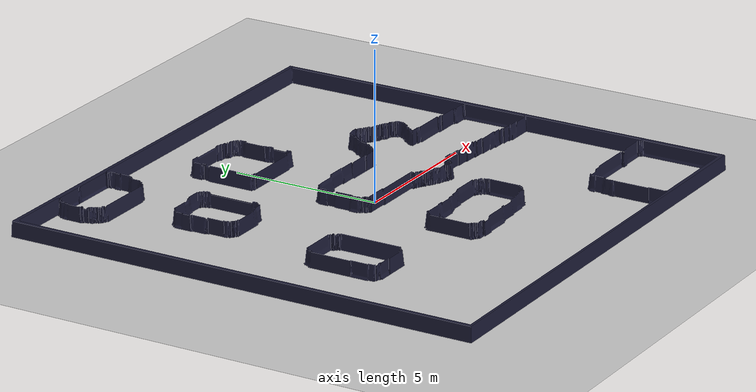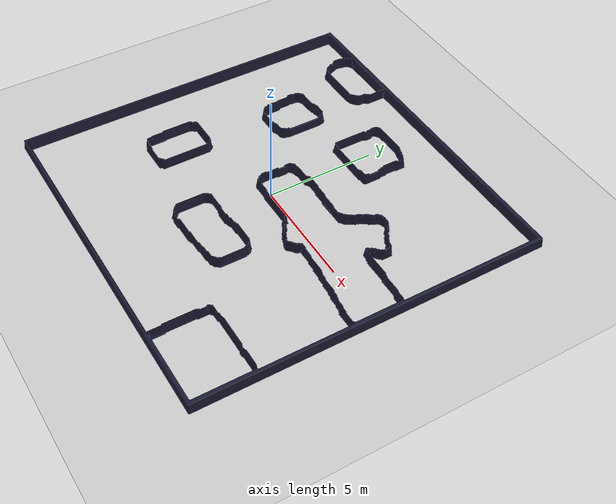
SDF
<?xml version="1.0"?>
<sdf version="1.6">
  <world name="default">

    <include>
      <uri>model://ground_plane</uri>
    </include>

    <include>
      <uri>model://sun</uri>
    </include>

    <scene>
      <shadows>false</shadows>
    </scene>

    <gui fullscreen='0'>
      <camera name='user_camera'>
        <pose frame=''>0. -1.5 25.5 0 1.5138 1.5707</pose>
        <view_controller>orbit</view_controller>
        <projection_type>perspective</projection_type>
      </camera>
    </gui>

    <physics type="ode">
      <real_time_update_rate>1000.0</real_time_update_rate>
      <max_step_size>0.001</max_step_size>
      <real_time_factor>1</real_time_factor>
      <ode>
        <solver>
          <type>quick</type>
          <iters>150</iters>
          <precon_iters>0</precon_iters>
          <sor>1.400000</sor>
          <use_dynamic_moi_rescaling>1</use_dynamic_moi_rescaling>
        </solver>
        <constraints>
          <cfm>0.00001</cfm>
          <erp>0.2</erp>
          <contact_max_correcting_vel>2000.000000</contact_max_correcting_vel>
          <contact_surface_layer>0.01000</contact_surface_layer>
        </constraints>
      </ode>
    </physics>

    <include>
      <uri>model://map_1</uri>
    </include>
  </world>
</sdf>

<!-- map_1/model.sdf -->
<sdf version="1.5">
  <model name="mapa">
  <pose>0.0 0. 0.25 0.0 0.0 0.</pose>
    <static>true</static>

    <link name="base_link">
      <inertial>
        <pose>0 0 0 0 0 0</pose>
        <inertia>
          <ixx>4.2111447e-02</ixx>
          <ixy>0</ixy>
          <ixz>0</ixz>
          <iyy>4.2111447e-02</iyy>
          <iyz>0</iyz>
          <izz>7.5254874e-02</izz>
        </inertia>
        <mass>2</mass>
      </inertial>

      <collision name="base_collision">
        <pose>0 0 0 0 0 0</pose>
        <geometry>
          <mesh>
            <uri>model://map_1/meshes/map_1.stl</uri>
            <scale>1. 1. 1.</scale>
          </mesh>
        </geometry>
      </collision>

      <visual name="base_visual">
        <pose>0 0 0 0 0 0</pose>
        <geometry>
          <mesh>
            <uri>model://map_1/meshes/map_1.stl</uri>
            <scale>1. 1. 1.</scale>
          </mesh>
        </geometry>
        <material> <!-- map material -->
          <ambient>0.1 0.1 0.1 1</ambient>
          <diffuse>0.1 0.1 0.2 1</diffuse>
          <specular>0 0 0 0</specular>
          <emissive>0 0 0 1</emissive>
        </material> <!-- End map material -->
      </visual>
    </link>
  </model>
</sdf>
